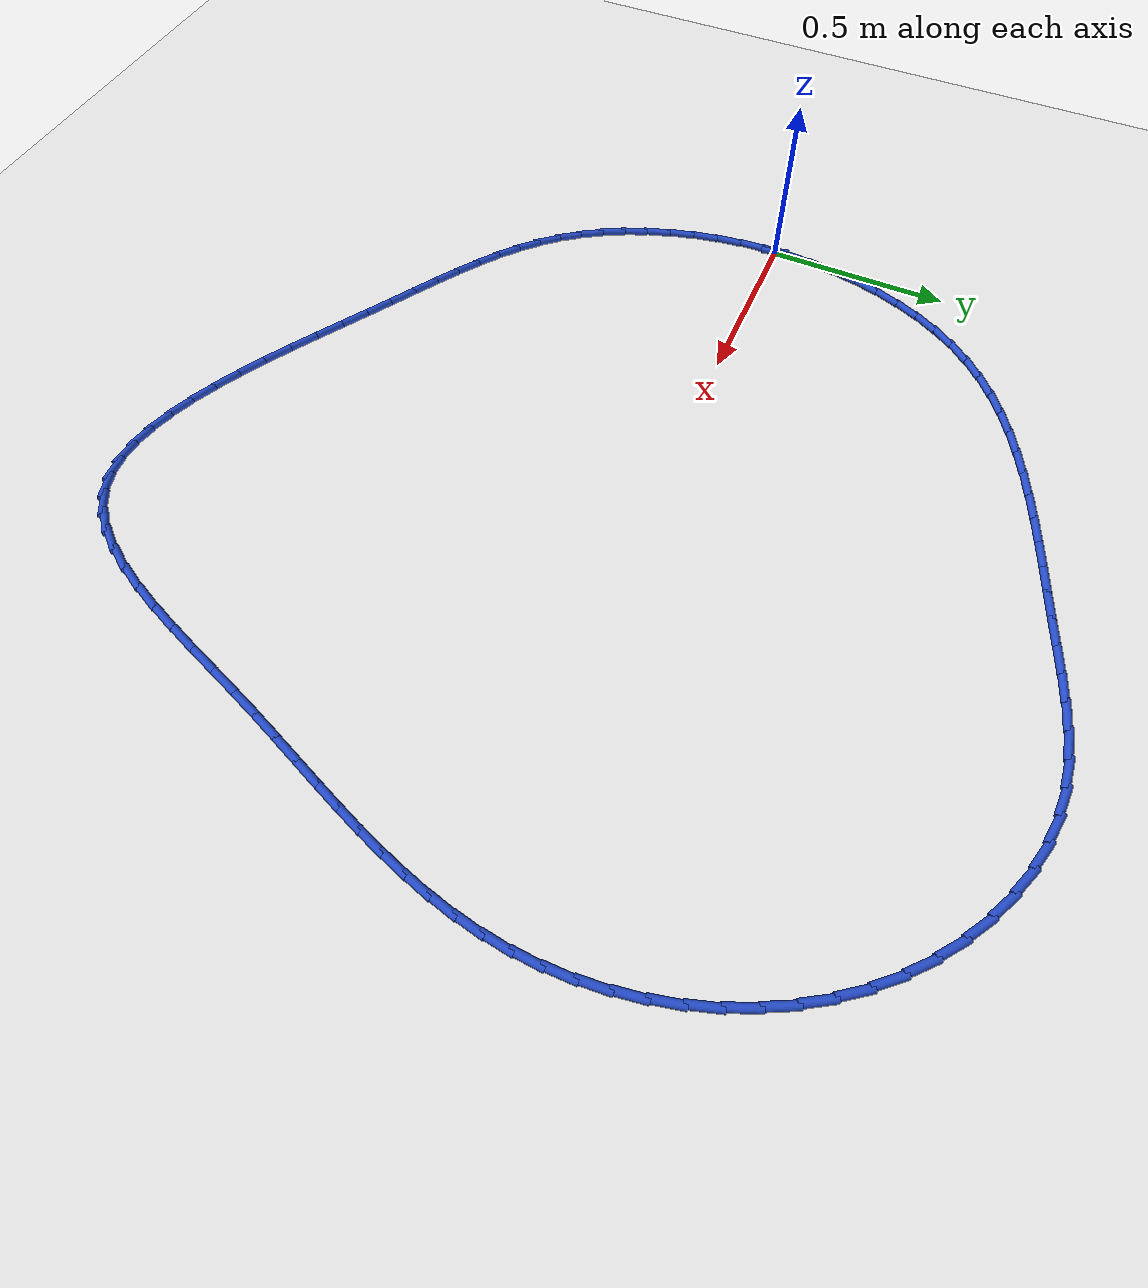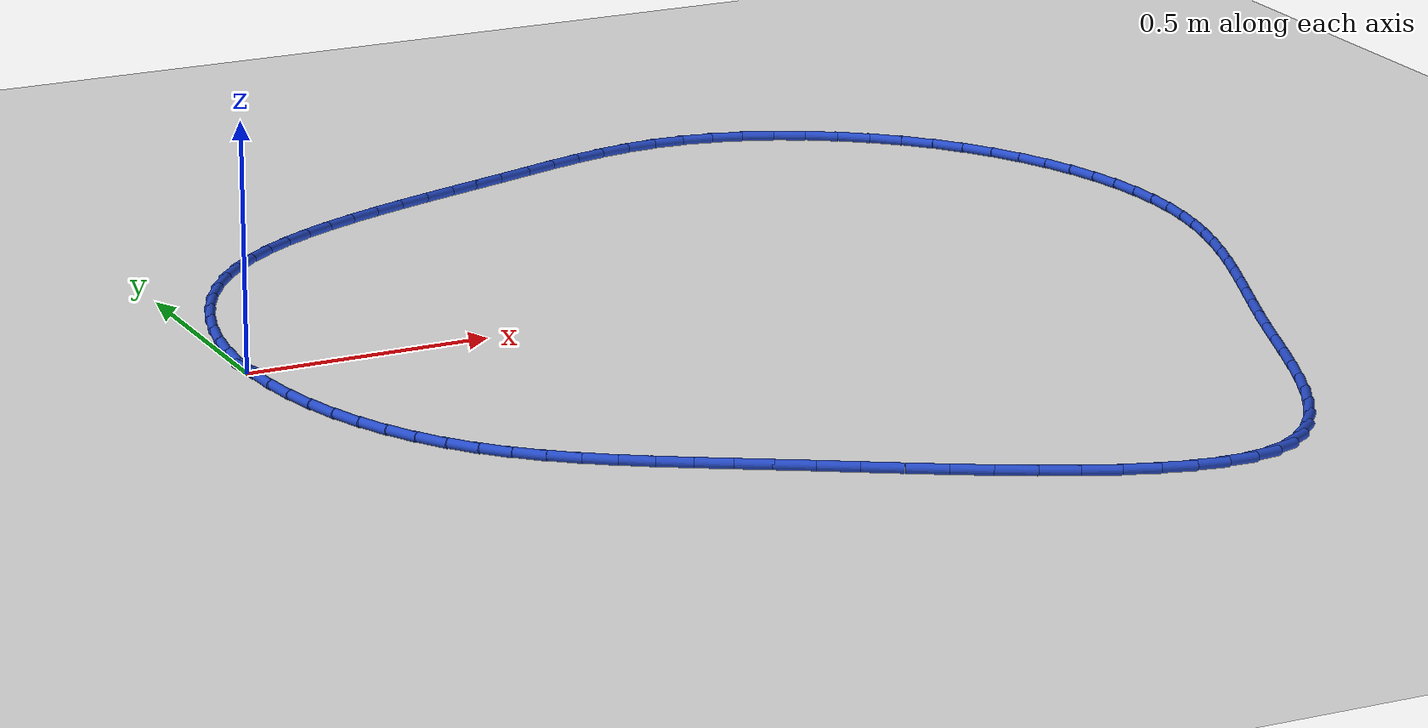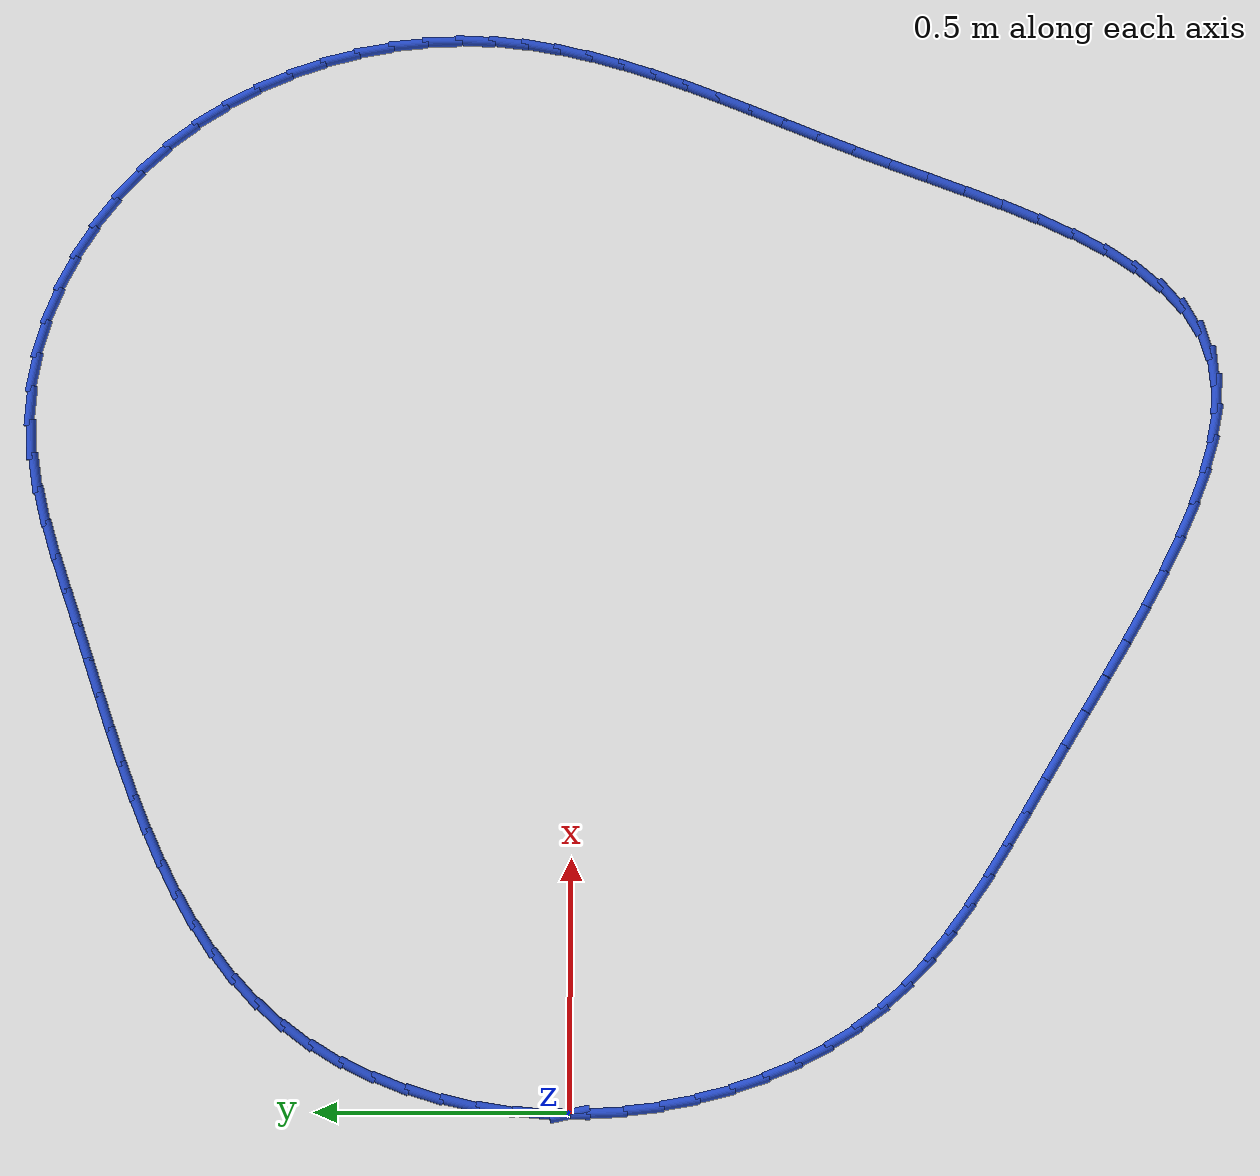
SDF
<sdf version="1.6">
 <world name="default">
  <light name="sun" type="directional">
   <pose>0 0 10 0 -0 0</pose>
   <diffuse>0.8 0.8 0.8 1</diffuse>
   <specular>0.2 0.2 0.2 1</specular>
   <attenuation>
    <range>1000</range>
    <constant>0.9</constant>
    <linear>0.01</linear>
    <quadratic>0.001</quadratic>
   </attenuation>
   <direction>-0.5 0.1 -0.9</direction>
  </light>
  <model name="ground_plane">
   <static>1</static>
   <link name="link">
    <collision name="collision">
     <geometry><plane><normal>0 0 1</normal><size>100 100</size></plane></geometry>
     <surface><friction><ode><mu>100</mu><mu2>50</mu2></ode></friction></surface>
    </collision>
    <visual name="visual">
     <cast_shadows>0</cast_shadows>
     <geometry><plane><normal>0 0 1</normal><size>100 100</size></plane></geometry>
     <material>
      <script><uri>file://media/materials/scripts/gazebo.material</uri><name>Gazebo/WhiteGlow</name></script>
     </material>
    </visual>
   </link>
  </model>
  <gravity>0 0 -9.8</gravity>
  <magnetic_field>6e-06 2.3e-05 -4.2e-05</magnetic_field>
  <atmosphere type="adiabatic"/>
  <physics name="default_physics" default="0" type="ode">
   <max_step_size>0.001</max_step_size>
   <real_time_factor>1</real_time_factor>
   <real_time_update_rate>1000</real_time_update_rate>
  </physics>
  <scene><ambient>0.4 0.4 0.4 1</ambient><background>0.7 0.7 0.7 1</background><shadows>1</shadows></scene>
  <spherical_coordinates>
   <surface_model>EARTH_WGS84</surface_model>
   <latitude_deg>0</latitude_deg>
   <longitude_deg>0</longitude_deg>
   <elevation>0</elevation>
   <heading_deg>0</heading_deg>
  </spherical_coordinates>
  <model name="line">
   <link name="link_0">
    <pose>-4.163336342344337e-17 -9.71445146547012e-17 0.01 0 1.57 1.5441960842757674</pose>
    <collision name="collision">
     <geometry><cylinder><radius>0.01</radius><length>0.08</length></cylinder></geometry>
    </collision>
    <visual name="visual">
     <material>
      <script><name>Gazebo/Blue</name><uri>file://media/materials/scripts/gazebo.material</uri></script>
     </material>
     <geometry><cylinder><radius>0.01</radius><length>0.08</length></cylinder></geometry>
    </visual>
   </link>
   <link name="link_1">
    <pose>0.0019254566969696756 0.07236785681562076 0.01 0 1.57 1.4767528906514031</pose>
    <collision name="collision">
     <geometry><cylinder><radius>0.01</radius><length>0.08</length></cylinder></geometry>
    </collision>
    <visual name="visual">
     <material>
      <script><name>Gazebo/Blue</name><uri>file://media/materials/scripts/gazebo.material</uri></script>
     </material>
     <geometry><cylinder><radius>0.01</radius><length>0.08</length></cylinder></geometry>
    </visual>
   </link>
   <link name="link_2">
    <pose>0.008705572307833075 0.14425076467885847 0.01 0 1.57 1.4082338307532505</pose>
    <collision name="collision">
     <geometry><cylinder><radius>0.01</radius><length>0.08</length></cylinder></geometry>
    </collision>
    <visual name="visual">
     <material>
      <script><name>Gazebo/Blue</name><uri>file://media/materials/scripts/gazebo.material</uri></script>
     </material>
     <geometry><cylinder><radius>0.01</radius><length>0.08</length></cylinder></geometry>
    </visual>
   </link>
   <link name="link_3">
    <pose>0.020325228089800848 0.2150980967287762 0.01 0 1.57 1.3376908909073655</pose>
    <collision name="collision">
     <geometry><cylinder><radius>0.01</radius><length>0.08</length></cylinder></geometry>
    </collision>
    <visual name="visual">
     <material>
      <script><name>Gazebo/Blue</name><uri>file://media/materials/scripts/gazebo.material</uri></script>
     </material>
     <geometry><cylinder><radius>0.01</radius><length>0.08</length></cylinder></geometry>
    </visual>
   </link>
   <link name="link_4">
    <pose>0.03676930530008363 0.2843592261044371 0.01 0 1.57 1.264155866896494</pose>
    <collision name="collision">
     <geometry><cylinder><radius>0.01</radius><length>0.08</length></cylinder></geometry>
    </collision>
    <visual name="visual">
     <material>
      <script><name>Gazebo/Blue</name><uri>file://media/materials/scripts/gazebo.material</uri></script>
     </material>
     <geometry><cylinder><radius>0.01</radius><length>0.08</length></cylinder></geometry>
    </visual>
   </link>
   <link name="link_5">
    <pose>0.05802268519589207 0.3514835259449039 0.01 0 1.57 1.1866452755042212</pose>
    <collision name="collision">
     <geometry><cylinder><radius>0.01</radius><length>0.08</length></cylinder></geometry>
    </collision>
    <visual name="visual">
     <material>
      <script><name>Gazebo/Blue</name><uri>file://media/materials/scripts/gazebo.material</uri></script>
     </material>
     <geometry><cylinder><radius>0.01</radius><length>0.08</length></cylinder></geometry>
    </visual>
   </link>
   <link name="link_6">
    <pose>0.08407024903443686 0.4159203693892401 0.01 0 1.57 1.104182497661725</pose>
    <collision name="collision">
     <geometry><cylinder><radius>0.01</radius><length>0.08</length></cylinder></geometry>
    </collision>
    <visual name="visual">
     <material>
      <script><name>Gazebo/Blue</name><uri>file://media/materials/scripts/gazebo.material</uri></script>
     </material>
     <geometry><cylinder><radius>0.01</radius><length>0.08</length></cylinder></geometry>
    </visual>
   </link>
   <link name="link_7">
    <pose>0.11489687807292867 0.47711912957650865 0.01 0 1.57 1.015846594948988</pose>
    <collision name="collision">
     <geometry><cylinder><radius>0.01</radius><length>0.08</length></cylinder></geometry>
    </collision>
    <visual name="visual">
     <material>
      <script><name>Gazebo/Blue</name><uri>file://media/materials/scripts/gazebo.material</uri></script>
     </material>
     <geometry><cylinder><radius>0.01</radius><length>0.08</length></cylinder></geometry>
    </visual>
   </link>
   <link name="link_8">
    <pose>0.15048745356857807 0.5345291796457723 0.01 0 1.57 0.9208582630034053</pose>
    <collision name="collision">
     <geometry><cylinder><radius>0.01</radius><length>0.08</length></cylinder></geometry>
    </collision>
    <visual name="visual">
     <material>
      <script><name>Gazebo/Blue</name><uri>file://media/materials/scripts/gazebo.material</uri></script>
     </material>
     <geometry><cylinder><radius>0.01</radius><length>0.08</length></cylinder></geometry>
    </visual>
   </link>
   <link name="link_9">
    <pose>0.1908268567785958 0.5875998927360946 0.01 0 1.57 0.8211212208538966</pose>
    <collision name="collision">
     <geometry><cylinder><radius>0.01</radius><length>0.08</length></cylinder></geometry>
    </collision>
    <visual name="visual">
     <material>
      <script><name>Gazebo/Blue</name><uri>file://media/materials/scripts/gazebo.material</uri></script>
     </material>
     <geometry><cylinder><radius>0.01</radius><length>0.08</length></cylinder></geometry>
    </visual>
   </link>
   <link name="link_10">
    <pose>0.2358316940518963 0.6359407425424886 0.01 0 1.57 0.7270515077841354</pose>
    <collision name="collision">
     <geometry><cylinder><radius>0.01</radius><length>0.08</length></cylinder></geometry>
    </collision>
    <visual name="visual">
     <material>
      <script><name>Gazebo/Blue</name><uri>file://media/materials/scripts/gazebo.material</uri></script>
     </material>
     <geometry><cylinder><radius>0.01</radius><length>0.08</length></cylinder></geometry>
    </visual>
   </link>
   <link name="link_11">
    <pose>0.2851424607427094 0.679808666445474 0.01 0 1.57 0.6425984398836045</pose>
    <collision name="collision">
     <geometry><cylinder><radius>0.01</radius><length>0.08</length></cylinder></geometry>
    </collision>
    <visual name="visual">
     <material>
      <script><name>Gazebo/Blue</name><uri>file://media/materials/scripts/gazebo.material</uri></script>
     </material>
     <geometry><cylinder><radius>0.01</radius><length>0.08</length></cylinder></geometry>
    </visual>
   </link>
   <link name="link_12">
    <pose>0.3383298633335364 0.7196242525347653 0.01 0 1.57 0.5685311567885198</pose>
    <collision name="collision">
     <geometry><cylinder><radius>0.01</radius><length>0.08</length></cylinder></geometry>
    </collision>
    <visual name="visual">
     <material>
      <script><name>Gazebo/Blue</name><uri>file://media/materials/scripts/gazebo.material</uri></script>
     </material>
     <geometry><cylinder><radius>0.01</radius><length>0.08</length></cylinder></geometry>
    </visual>
   </link>
   <link name="link_13">
    <pose>0.394964608303507 0.7558080889079828 0.01 0 1.57 0.5049468567642643</pose>
    <collision name="collision">
     <geometry><cylinder><radius>0.01</radius><length>0.08</length></cylinder></geometry>
    </collision>
    <visual name="visual">
     <material>
      <script><name>Gazebo/Blue</name><uri>file://media/materials/scripts/gazebo.material</uri></script>
     </material>
     <geometry><cylinder><radius>0.01</radius><length>0.08</length></cylinder></geometry>
    </visual>
   </link>
   <link name="link_14">
    <pose>0.4546174021317505 0.7887807636627471 0.01 0 1.57 0.45151007248938646</pose>
    <collision name="collision">
     <geometry><cylinder><radius>0.01</radius><length>0.08</length></cylinder></geometry>
    </collision>
    <visual name="visual">
     <material>
      <script><name>Gazebo/Blue</name><uri>file://media/materials/scripts/gazebo.material</uri></script>
     </material>
     <geometry><cylinder><radius>0.01</radius><length>0.08</length></cylinder></geometry>
    </visual>
   </link>
   <link name="link_15">
    <pose>0.5168589512973968 0.8189628648966787 0.01 0 1.57 0.4076653794851117</pose>
    <collision name="collision">
     <geometry><cylinder><radius>0.01</radius><length>0.08</length></cylinder></geometry>
    </collision>
    <visual name="visual">
     <material>
      <script><name>Gazebo/Blue</name><uri>file://media/materials/scripts/gazebo.material</uri></script>
     </material>
     <geometry><cylinder><radius>0.01</radius><length>0.08</length></cylinder></geometry>
    </visual>
   </link>
   <link name="link_16">
    <pose>0.5812599622795758 0.8467749807073988 0.01 0 1.57 0.3727949450367546</pose>
    <collision name="collision">
     <geometry><cylinder><radius>0.01</radius><length>0.08</length></cylinder></geometry>
    </collision>
    <visual name="visual">
     <material>
      <script><name>Gazebo/Blue</name><uri>file://media/materials/scripts/gazebo.material</uri></script>
     </material>
     <geometry><cylinder><radius>0.01</radius><length>0.08</length></cylinder></geometry>
    </visual>
   </link>
   <link name="link_17">
    <pose>0.6473911415574168 0.8726376991925275 0.01 0 1.57 0.34632166608344545</pose>
    <collision name="collision">
     <geometry><cylinder><radius>0.01</radius><length>0.08</length></cylinder></geometry>
    </collision>
    <visual name="visual">
     <material>
      <script><name>Gazebo/Blue</name><uri>file://media/materials/scripts/gazebo.material</uri></script>
     </material>
     <geometry><cylinder><radius>0.01</radius><length>0.08</length></cylinder></geometry>
    </visual>
   </link>
   <link name="link_18">
    <pose>0.7148231956100495 0.8969716084496856 0.01 0 1.57 0.3277706867109438</pose>
    <collision name="collision">
     <geometry><cylinder><radius>0.01</radius><length>0.08</length></cylinder></geometry>
    </collision>
    <visual name="visual">
     <material>
      <script><name>Gazebo/Blue</name><uri>file://media/materials/scripts/gazebo.material</uri></script>
     </material>
     <geometry><cylinder><radius>0.01</radius><length>0.08</length></cylinder></geometry>
    </visual>
   </link>
   <link name="link_19">
    <pose>0.7831268309166036 0.9201972965764935 0.01 0 1.57 0.31680357833871725</pose>
    <collision name="collision">
     <geometry><cylinder><radius>0.01</radius><length>0.08</length></cylinder></geometry>
    </collision>
    <visual name="visual">
     <material>
      <script><name>Gazebo/Blue</name><uri>file://media/materials/scripts/gazebo.material</uri></script>
     </material>
     <geometry><cylinder><radius>0.01</radius><length>0.08</length></cylinder></geometry>
    </visual>
   </link>
   <link name="link_20">
    <pose>0.8518727539562088 0.9427353516705721 0.01 0 1.57 0.3132366239114829</pose>
    <collision name="collision">
     <geometry><cylinder><radius>0.01</radius><length>0.08</length></cylinder></geometry>
    </collision>
    <visual name="visual">
     <material>
      <script><name>Gazebo/Blue</name><uri>file://media/materials/scripts/gazebo.material</uri></script>
     </material>
     <geometry><cylinder><radius>0.01</radius><length>0.08</length></cylinder></geometry>
    </visual>
   </link>
   <link name="link_21">
    <pose>0.9206316712079943 0.9650063618295415 0.01 0 1.57 0.31703243560488065</pose>
    <collision name="collision">
     <geometry><cylinder><radius>0.01</radius><length>0.08</length></cylinder></geometry>
    </collision>
    <visual name="visual">
     <material>
      <script><name>Gazebo/Blue</name><uri>file://media/materials/scripts/gazebo.material</uri></script>
     </material>
     <geometry><cylinder><radius>0.01</radius><length>0.08</length></cylinder></geometry>
    </visual>
   </link>
   <link name="link_22">
    <pose>0.9889747148369554 0.987429657861617 0.01 0 1.57 0.3212629503142404</pose>
    <collision name="collision">
     <geometry><cylinder><radius>0.01</radius><length>0.08</length></cylinder></geometry>
    </collision>
    <visual name="visual">
     <material>
      <script><name>Gazebo/Blue</name><uri>file://media/materials/scripts/gazebo.material</uri></script>
     </material>
     <geometry><cylinder><radius>0.01</radius><length>0.08</length></cylinder></geometry>
    </visual>
   </link>
   <link name="link_23">
    <pose>1.0566349113848896 1.0099464055672696 0.01 0 1.57 0.30805359795171594</pose>
    <collision name="collision">
     <geometry><cylinder><radius>0.01</radius><length>0.08</length></cylinder></geometry>
    </collision>
    <visual name="visual">
     <material>
      <script><name>Gazebo/Blue</name><uri>file://media/materials/scripts/gazebo.material</uri></script>
     </material>
     <geometry><cylinder><radius>0.01</radius><length>0.08</length></cylinder></geometry>
    </visual>
   </link>
   <link name="link_24">
    <pose>1.1237503546369747 1.0313013797086104 0.01 0 1.57 0.2738139607576156</pose>
    <collision name="collision">
     <geometry><cylinder><radius>0.01</radius><length>0.08</length></cylinder></geometry>
    </collision>
    <visual name="visual">
     <material>
      <script><name>Gazebo/Blue</name><uri>file://media/materials/scripts/gazebo.material</uri></script>
     </material>
     <geometry><cylinder><radius>0.01</radius><length>0.08</length></cylinder></geometry>
    </visual>
   </link>
   <link name="link_25">
    <pose>1.1905214595829 1.0500552855338847 0.01 0 1.57 0.2173456023994492</pose>
    <collision name="collision">
     <geometry><cylinder><radius>0.01</radius><length>0.08</length></cylinder></geometry>
    </collision>
    <visual name="visual">
     <material>
      <script><name>Gazebo/Blue</name><uri>file://media/materials/scripts/gazebo.material</uri></script>
     </material>
     <geometry><cylinder><radius>0.01</radius><length>0.08</length></cylinder></geometry>
    </visual>
   </link>
   <link name="link_26">
    <pose>1.2571486412123503 1.0647688282913355 0.01 0 1.57 0.13759793301774764</pose>
    <collision name="collision">
     <geometry><cylinder><radius>0.01</radius><length>0.08</length></cylinder></geometry>
    </collision>
    <visual name="visual">
     <material>
      <script><name>Gazebo/Blue</name><uri>file://media/materials/scripts/gazebo.material</uri></script>
     </material>
     <geometry><cylinder><radius>0.01</radius><length>0.08</length></cylinder></geometry>
    </visual>
   </link>
   <link name="link_27">
    <pose>1.3238323145150137 1.074002713229208 0.01 0 1.57 0.03456812316466727</pose>
    <collision name="collision">
     <geometry><cylinder><radius>0.01</radius><length>0.08</length></cylinder></geometry>
    </collision>
    <visual name="visual">
     <material>
      <script><name>Gazebo/Blue</name><uri>file://media/materials/scripts/gazebo.material</uri></script>
     </material>
     <geometry><cylinder><radius>0.01</radius><length>0.08</length></cylinder></geometry>
    </visual>
   </link>
   <link name="link_28">
    <pose>1.3907728944805777 1.076317645595746 0.01 0 1.57 -0.0851312083989855</pose>
    <collision name="collision">
     <geometry><cylinder><radius>0.01</radius><length>0.08</length></cylinder></geometry>
    </collision>
    <visual name="visual">
     <material>
      <script><name>Gazebo/Blue</name><uri>file://media/materials/scripts/gazebo.material</uri></script>
     </material>
     <geometry><cylinder><radius>0.01</radius><length>0.08</length></cylinder></geometry>
    </visual>
   </link>
   <link name="link_29">
    <pose>1.4580378656585262 1.070577423531421 0.01 0 1.57 -0.20036541612657457</pose>
    <collision name="collision">
     <geometry><cylinder><radius>0.01</radius><length>0.08</length></cylinder></geometry>
    </collision>
    <visual name="visual">
     <material>
      <script><name>Gazebo/Blue</name><uri>file://media/materials/scripts/gazebo.material</uri></script>
     </material>
     <geometry><cylinder><radius>0.01</radius><length>0.08</length></cylinder></geometry>
    </visual>
   </link>
   <link name="link_30">
    <pose>1.5251212325142525 1.0569534293316931 0.01 0 1.57 -0.30677895208235606</pose>
    <collision name="collision">
     <geometry><cylinder><radius>0.01</radius><length>0.08</length></cylinder></geometry>
    </collision>
    <visual name="visual">
     <material>
      <script><name>Gazebo/Blue</name><uri>file://media/materials/scripts/gazebo.material</uri></script>
     </material>
     <geometry><cylinder><radius>0.01</radius><length>0.08</length></cylinder></geometry>
    </visual>
   </link>
   <link name="link_31">
    <pose>1.5913623828893384 1.035969584557113 0.01 0 1.57 -0.405867176798396</pose>
    <collision name="collision">
     <geometry><cylinder><radius>0.01</radius><length>0.08</length></cylinder></geometry>
    </collision>
    <visual name="visual">
     <material>
      <script><name>Gazebo/Blue</name><uri>file://media/materials/scripts/gazebo.material</uri></script>
     </material>
     <geometry><cylinder><radius>0.01</radius><length>0.08</length></cylinder></geometry>
    </visual>
   </link>
   <link name="link_32">
    <pose>1.656100702331133 1.008149815999285 0.01 0 1.57 -0.4993469195373617</pose>
    <collision name="collision">
     <geometry><cylinder><radius>0.01</radius><length>0.08</length></cylinder></geometry>
    </collision>
    <visual name="visual">
     <material>
      <script><name>Gazebo/Blue</name><uri>file://media/materials/scripts/gazebo.material</uri></script>
     </material>
     <geometry><cylinder><radius>0.01</radius><length>0.08</length></cylinder></geometry>
    </visual>
   </link>
   <link name="link_33">
    <pose>1.7186755763869828 0.9740180504498119 0.01 0 1.57 -0.5889979203279362</pose>
    <collision name="collision">
     <geometry><cylinder><radius>0.01</radius><length>0.08</length></cylinder></geometry>
    </collision>
    <visual name="visual">
     <material>
      <script><name>Gazebo/Blue</name><uri>file://media/materials/scripts/gazebo.material</uri></script>
     </material>
     <geometry><cylinder><radius>0.01</radius><length>0.08</length></cylinder></geometry>
    </visual>
   </link>
   <link name="link_34">
    <pose>1.7784263906042375 0.9340982147002982 0.01 0 1.57 -0.6765920500046849</pose>
    <collision name="collision">
     <geometry><cylinder><radius>0.01</radius><length>0.08</length></cylinder></geometry>
    </collision>
    <visual name="visual">
     <material>
      <script><name>Gazebo/Blue</name><uri>file://media/materials/scripts/gazebo.material</uri></script>
     </material>
     <geometry><cylinder><radius>0.01</radius><length>0.08</length></cylinder></geometry>
    </visual>
   </link>
   <link name="link_35">
    <pose>1.8346925305302442 0.888914235542347 0.01 0 1.57 -0.7638751569448927</pose>
    <collision name="collision">
     <geometry><cylinder><radius>0.01</radius><length>0.08</length></cylinder></geometry>
    </collision>
    <visual name="visual">
     <material>
      <script><name>Gazebo/Blue</name><uri>file://media/materials/scripts/gazebo.material</uri></script>
     </material>
     <geometry><cylinder><radius>0.01</radius><length>0.08</length></cylinder></geometry>
    </visual>
   </link>
   <link name="link_36">
    <pose>1.8868133817123511 0.8389900397675624 0.01 0 1.57 -0.8524862398051977</pose>
    <collision name="collision">
     <geometry><cylinder><radius>0.01</radius><length>0.08</length></cylinder></geometry>
    </collision>
    <visual name="visual">
     <material>
      <script><name>Gazebo/Blue</name><uri>file://media/materials/scripts/gazebo.material</uri></script>
     </material>
     <geometry><cylinder><radius>0.01</radius><length>0.08</length></cylinder></geometry>
    </visual>
   </link>
   <link name="link_37">
    <pose>1.9341362004313423 0.7848500454187075 0.01 0 1.57 -0.9406996228084142</pose>
    <collision name="collision">
     <geometry><cylinder><radius>0.01</radius><length>0.08</length></cylinder></geometry>
    </collision>
    <visual name="visual">
     <material>
      <script><name>Gazebo/Blue</name><uri>file://media/materials/scripts/gazebo.material</uri></script>
     </material>
     <geometry><cylinder><radius>0.01</radius><length>0.08</length></cylinder></geometry>
    </visual>
   </link>
   <link name="link_38">
    <pose>1.9762973161218103 0.7270367130149363 0.01 0 1.57 -1.024975880051285</pose>
    <collision name="collision">
     <geometry><cylinder><radius>0.01</radius><length>0.08</length></cylinder></geometry>
    </collision>
    <visual name="visual">
     <material>
      <script><name>Gazebo/Blue</name><uri>file://media/materials/scripts/gazebo.material</uri></script>
     </material>
     <geometry><cylinder><radius>0.01</radius><length>0.08</length></cylinder></geometry>
    </visual>
   </link>
   <link name="link_39">
    <pose>2.013299079108123 0.6661153482382084 0.01 0 1.57 -1.1054234771689952</pose>
    <collision name="collision">
     <geometry><cylinder><radius>0.01</radius><length>0.08</length></cylinder></geometry>
    </collision>
    <visual name="visual">
     <material>
      <script><name>Gazebo/Blue</name><uri>file://media/materials/scripts/gazebo.material</uri></script>
     </material>
     <geometry><cylinder><radius>0.01</radius><length>0.08</length></cylinder></geometry>
    </visual>
   </link>
   <link name="link_40">
    <pose>2.0451673692116397 0.6026527253620436 0.01 0 1.57 -1.1825958054746404</pose>
    <collision name="collision">
     <geometry><cylinder><radius>0.01</radius><length>0.08</length></cylinder></geometry>
    </collision>
    <visual name="visual">
     <material>
      <script><name>Gazebo/Blue</name><uri>file://media/materials/scripts/gazebo.material</uri></script>
     </material>
     <geometry><cylinder><radius>0.01</radius><length>0.08</length></cylinder></geometry>
    </visual>
   </link>
   <link name="link_41">
    <pose>2.07192806625372 0.5372156186599624 0.01 0 1.57 -1.2571813065185364</pose>
    <collision name="collision">
     <geometry><cylinder><radius>0.01</radius><length>0.08</length></cylinder></geometry>
    </collision>
    <visual name="visual">
     <material>
      <script><name>Gazebo/Blue</name><uri>file://media/materials/scripts/gazebo.material</uri></script>
     </material>
     <geometry><cylinder><radius>0.01</radius><length>0.08</length></cylinder></geometry>
    </visual>
   </link>
   <link name="link_42">
    <pose>2.093607050055725 0.47037080240548484 0.01 0 1.57 -1.329969659708175</pose>
    <collision name="collision">
     <geometry><cylinder><radius>0.01</radius><length>0.08</length></cylinder></geometry>
    </collision>
    <visual name="visual">
     <material>
      <script><name>Gazebo/Blue</name><uri>file://media/materials/scripts/gazebo.material</uri></script>
     </material>
     <geometry><cylinder><radius>0.01</radius><length>0.08</length></cylinder></geometry>
    </visual>
   </link>
   <link name="link_43">
    <pose>2.110230200439013 0.40268505087213036 0.01 0 1.57 -1.4018340086658638</pose>
    <collision name="collision">
     <geometry><cylinder><radius>0.01</radius><length>0.08</length></cylinder></geometry>
    </collision>
    <visual name="visual">
     <material>
      <script><name>Gazebo/Blue</name><uri>file://media/materials/scripts/gazebo.material</uri></script>
     </material>
     <geometry><cylinder><radius>0.01</radius><length>0.08</length></cylinder></geometry>
    </visual>
   </link>
   <link name="link_44">
    <pose>2.121823397224946 0.3347251383334194 0.01 0 1.57 -1.473727064977006</pose>
    <collision name="collision">
     <geometry><cylinder><radius>0.01</radius><length>0.08</length></cylinder></geometry>
    </collision>
    <visual name="visual">
     <material>
      <script><name>Gazebo/Blue</name><uri>file://media/materials/scripts/gazebo.material</uri></script>
     </material>
     <geometry><cylinder><radius>0.01</radius><length>0.08</length></cylinder></geometry>
    </visual>
   </link>
   <link name="link_45">
    <pose>2.1284125202348814 0.2670578390628717 0.01 0 1.57 -1.5466631770510437</pose>
    <collision name="collision">
     <geometry><cylinder><radius>0.01</radius><length>0.08</length></cylinder></geometry>
    </collision>
    <visual name="visual">
     <material>
      <script><name>Gazebo/Blue</name><uri>file://media/materials/scripts/gazebo.material</uri></script>
     </material>
     <geometry><cylinder><radius>0.01</radius><length>0.08</length></cylinder></geometry>
    </visual>
   </link>
   <link name="link_46">
    <pose>2.130025205232897 0.20024634026287408 0.01 0 1.57 1.5222159827174908</pose>
    <collision name="collision">
     <geometry><cylinder><radius>0.01</radius><length>0.08</length></cylinder></geometry>
    </collision>
    <visual name="visual">
     <material>
      <script><name>Gazebo/Blue</name><uri>file://media/materials/scripts/gazebo.material</uri></script>
     </material>
     <geometry><cylinder><radius>0.01</radius><length>0.08</length></cylinder></geometry>
    </visual>
   </link>
   <link name="link_47">
    <pose>2.126831744553433 0.13456240774663983 0.01 0 1.57 1.4542719718325414</pose>
    <collision name="collision">
     <geometry><cylinder><radius>0.01</radius><length>0.08</length></cylinder></geometry>
    </collision>
    <visual name="visual">
     <material>
      <script><name>Gazebo/Blue</name><uri>file://media/materials/scripts/gazebo.material</uri></script>
     </material>
     <geometry><cylinder><radius>0.01</radius><length>0.08</length></cylinder></geometry>
    </visual>
   </link>
   <link name="link_48">
    <pose>2.1192481727862273 0.06977580066036106 0.01 0 1.57 1.3929616304782233</pose>
    <collision name="collision">
     <geometry><cylinder><radius>0.01</radius><length>0.08</length></cylinder></geometry>
    </collision>
    <visual name="visual">
     <material>
      <script><name>Gazebo/Blue</name><uri>file://media/materials/scripts/gazebo.material</uri></script>
     </material>
     <geometry><cylinder><radius>0.01</radius><length>0.08</length></cylinder></geometry>
    </visual>
   </link>
   <link name="link_49">
    <pose>2.1077148290607766 0.005606628402438781 0.01 0 1.57 1.3393558069771974</pose>
    <collision name="collision">
     <geometry><cylinder><radius>0.01</radius><length>0.08</length></cylinder></geometry>
    </collision>
    <visual name="visual">
     <material>
      <script><name>Gazebo/Blue</name><uri>file://media/materials/scripts/gazebo.material</uri></script>
     </material>
     <geometry><cylinder><radius>0.01</radius><length>0.08</length></cylinder></geometry>
    </visual>
   </link>
   <link name="link_50">
    <pose>2.0926720525065754 -0.05822499962872501 0.01 0 1.57 1.2940813974500647</pose>
    <collision name="collision">
     <geometry><cylinder><radius>0.01</radius><length>0.08</length></cylinder></geometry>
    </collision>
    <visual name="visual">
     <material>
      <script><name>Gazebo/Blue</name><uri>file://media/materials/scripts/gazebo.material</uri></script>
     </material>
     <geometry><cylinder><radius>0.01</radius><length>0.08</length></cylinder></geometry>
    </visual>
   </link>
   <link name="link_51">
    <pose>2.074560182253122 -0.12199897403472854 0.01 0 1.57 1.2573864011234177</pose>
    <collision name="collision">
     <geometry><cylinder><radius>0.01</radius><length>0.08</length></cylinder></geometry>
    </collision>
    <visual name="visual">
     <material>
      <script><name>Gazebo/Blue</name><uri>file://media/materials/scripts/gazebo.material</uri></script>
     </material>
     <geometry><cylinder><radius>0.01</radius><length>0.08</length></cylinder></geometry>
    </visual>
   </link>
   <link name="link_52">
    <pose>2.0538195574299087 -0.18599518541717017 0.01 0 1.57 1.229231798746439</pose>
    <collision name="collision">
     <geometry><cylinder><radius>0.01</radius><length>0.08</length></cylinder></geometry>
    </collision>
    <visual name="visual">
     <material>
      <script><name>Gazebo/Blue</name><uri>file://media/materials/scripts/gazebo.material</uri></script>
     </material>
     <geometry><cylinder><radius>0.01</radius><length>0.08</length></cylinder></geometry>
    </visual>
   </link>
   <link name="link_53">
    <pose>2.0308905171664353 -0.2504935243776482 0.01 0 1.57 1.2093828162227123</pose>
    <collision name="collision">
     <geometry><cylinder><radius>0.01</radius><length>0.08</length></cylinder></geometry>
    </collision>
    <visual name="visual">
     <material>
      <script><name>Gazebo/Blue</name><uri>file://media/materials/scripts/gazebo.material</uri></script>
     </material>
     <geometry><cylinder><radius>0.01</radius><length>0.08</length></cylinder></geometry>
    </visual>
   </link>
   <link name="link_54">
    <pose>2.006213400592195 -0.31577388151776103 0.01 0 1.57 1.1974839863420936</pose>
    <collision name="collision">
     <geometry><cylinder><radius>0.01</radius><length>0.08</length></cylinder></geometry>
    </collision>
    <visual name="visual">
     <material>
      <script><name>Gazebo/Blue</name><uri>file://media/materials/scripts/gazebo.material</uri></script>
     </material>
     <geometry><cylinder><radius>0.01</radius><length>0.08</length></cylinder></geometry>
    </visual>
   </link>
   <link name="link_55">
    <pose>1.9802285468366843 -0.3821161474391068 0.01 0 1.57 1.1931126952651878</pose>
    <collision name="collision">
     <geometry><cylinder><radius>0.01</radius><length>0.08</length></cylinder></geometry>
    </collision>
    <visual name="visual">
     <material>
      <script><name>Gazebo/Blue</name><uri>file://media/materials/scripts/gazebo.material</uri></script>
     </material>
     <geometry><cylinder><radius>0.01</radius><length>0.08</length></cylinder></geometry>
    </visual>
   </link>
   <link name="link_56">
    <pose>1.953376295029399 -0.4498002127432839 0.01 0 1.57 1.1958122733085417</pose>
    <collision name="collision">
     <geometry><cylinder><radius>0.01</radius><length>0.08</length></cylinder></geometry>
    </collision>
    <visual name="visual">
     <material>
      <script><name>Gazebo/Blue</name><uri>file://media/materials/scripts/gazebo.material</uri></script>
     </material>
     <geometry><cylinder><radius>0.01</radius><length>0.08</length></cylinder></geometry>
    </visual>
   </link>
   <link name="link_57">
    <pose>1.926096984299835 -0.5191059680318908 0.01 0 1.57 1.2051085979643439</pose>
    <collision name="collision">
     <geometry><cylinder><radius>0.01</radius><length>0.08</length></cylinder></geometry>
    </collision>
    <visual name="visual">
     <material>
      <script><name>Gazebo/Blue</name><uri>file://media/materials/scripts/gazebo.material</uri></script>
     </material>
     <geometry><cylinder><radius>0.01</radius><length>0.08</length></cylinder></geometry>
    </visual>
   </link>
   <link name="link_58">
    <pose>1.898830953777489 -0.5903133039065247 0.01 0 1.57 1.218829828299603</pose>
    <collision name="collision">
     <geometry><cylinder><radius>0.01</radius><length>0.08</length></cylinder></geometry>
    </collision>
    <visual name="visual">
     <material>
      <script><name>Gazebo/Blue</name><uri>file://media/materials/scripts/gazebo.material</uri></script>
     </material>
     <geometry><cylinder><radius>0.01</radius><length>0.08</length></cylinder></geometry>
    </visual>
   </link>
   <link name="link_59">
    <pose>1.8719322155200813 -0.6635552550736802 0.01 0 1.57 1.225584747887063</pose>
    <collision name="collision">
     <geometry><cylinder><radius>0.01</radius><length>0.08</length></cylinder></geometry>
    </collision>
    <visual name="visual">
     <material>
      <script><name>Gazebo/Blue</name><uri>file://media/materials/scripts/gazebo.material</uri></script>
     </material>
     <geometry><cylinder><radius>0.01</radius><length>0.08</length></cylinder></geometry>
    </visual>
   </link>
   <link name="link_60">
    <pose>1.845171117928283 -0.73797195277358 0.01 0 1.57 1.221202159915652</pose>
    <collision name="collision">
     <geometry><cylinder><radius>0.01</radius><length>0.08</length></cylinder></geometry>
    </collision>
    <visual name="visual">
     <material>
      <script><name>Gazebo/Blue</name><uri>file://media/materials/scripts/gazebo.material</uri></script>
     </material>
     <geometry><cylinder><radius>0.01</radius><length>0.08</length></cylinder></geometry>
    </visual>
   </link>
   <link name="link_61">
    <pose>1.8180762589043535 -0.8122922727143574 0.01 0 1.57 1.205504278717944</pose>
    <collision name="collision">
     <geometry><cylinder><radius>0.01</radius><length>0.08</length></cylinder></geometry>
    </collision>
    <visual name="visual">
     <material>
      <script><name>Gazebo/Blue</name><uri>file://media/materials/scripts/gazebo.material</uri></script>
     </material>
     <geometry><cylinder><radius>0.01</radius><length>0.08</length></cylinder></geometry>
    </visual>
   </link>
   <link name="link_62">
    <pose>1.7901754621867016 -0.8852437736299551 0.01 0 1.57 1.1774242141231837</pose>
    <collision name="collision">
     <geometry><cylinder><radius>0.01</radius><length>0.08</length></cylinder></geometry>
    </collision>
    <visual name="visual">
     <material>
      <script><name>Gazebo/Blue</name><uri>file://media/materials/scripts/gazebo.material</uri></script>
     </material>
     <geometry><cylinder><radius>0.01</radius><length>0.08</length></cylinder></geometry>
    </visual>
   </link>
   <link name="link_63">
    <pose>1.7609965515137345 -0.9555540142543156 0.01 0 1.57 1.1348601301270536</pose>
    <collision name="collision">
     <geometry><cylinder><radius>0.01</radius><length>0.08</length></cylinder></geometry>
    </collision>
    <visual name="visual">
     <material>
      <script><name>Gazebo/Blue</name><uri>file://media/materials/scripts/gazebo.material</uri></script>
     </material>
     <geometry><cylinder><radius>0.01</radius><length>0.08</length></cylinder></geometry>
    </visual>
   </link>
   <link name="link_64">
    <pose>1.7300673506238615 -1.0219505533213817 0.01 0 1.57 1.0744236435302723</pose>
    <collision name="collision">
     <geometry><cylinder><radius>0.01</radius><length>0.08</length></cylinder></geometry>
    </collision>
    <visual name="visual">
     <material>
      <script><name>Gazebo/Blue</name><uri>file://media/materials/scripts/gazebo.material</uri></script>
     </material>
     <geometry><cylinder><radius>0.01</radius><length>0.08</length></cylinder></geometry>
    </visual>
   </link>
   <link name="link_65">
    <pose>1.696915683255489 -1.0831609495650953 0.01 0 1.57 0.991120338032514</pose>
    <collision name="collision">
     <geometry><cylinder><radius>0.01</radius><length>0.08</length></cylinder></geometry>
    </collision>
    <visual name="visual">
     <material>
      <script><name>Gazebo/Blue</name><uri>file://media/materials/scripts/gazebo.material</uri></script>
     </material>
     <geometry><cylinder><radius>0.01</radius><length>0.08</length></cylinder></geometry>
    </visual>
   </link>
   <link name="link_66">
    <pose>1.661069373147026 -1.1379127617193998 0.01 0 1.57 0.8782063709090905</pose>
    <collision name="collision">
     <geometry><cylinder><radius>0.01</radius><length>0.08</length></cylinder></geometry>
    </collision>
    <visual name="visual">
     <material>
      <script><name>Gazebo/Blue</name><uri>file://media/materials/scripts/gazebo.material</uri></script>
     </material>
     <geometry><cylinder><radius>0.01</radius><length>0.08</length></cylinder></geometry>
    </visual>
   </link>
   <link name="link_67">
    <pose>1.6220562440368806 -1.184933548518237 0.01 0 1.57 0.7280069853679235</pose>
    <collision name="collision">
     <geometry><cylinder><radius>0.01</radius><length>0.08</length></cylinder></geometry>
    </collision>
    <visual name="visual">
     <material>
      <script><name>Gazebo/Blue</name><uri>file://media/materials/scripts/gazebo.material</uri></script>
     </material>
     <geometry><cylinder><radius>0.01</radius><length>0.08</length></cylinder></geometry>
    </visual>
   </link>
   <link name="link_68">
    <pose>1.5794041196634607 -1.2229508686955497 0.01 0 1.57 0.5354280763381869</pose>
    <collision name="collision">
     <geometry><cylinder><radius>0.01</radius><length>0.08</length></cylinder></geometry>
    </collision>
    <visual name="visual">
     <material>
      <script><name>Gazebo/Blue</name><uri>file://media/materials/scripts/gazebo.material</uri></script>
     </material>
     <geometry><cylinder><radius>0.01</radius><length>0.08</length></cylinder></geometry>
    </visual>
   </link>
   <link name="link_69">
    <pose>1.532640845603937 -1.2506923335306064 0.01 0 1.57 0.3144441458399861</pose>
    <collision name="collision">
     <geometry><cylinder><radius>0.01</radius><length>0.08</length></cylinder></geometry>
    </collision>
    <visual name="visual">
     <material>
      <script><name>Gazebo/Blue</name><uri>file://media/materials/scripts/gazebo.material</uri></script>
     </material>
     <geometry><cylinder><radius>0.01</radius><length>0.08</length></cylinder></geometry>
    </visual>
   </link>
   <link name="link_70">
    <pose>1.4814796987757668 -1.2673317128250097 0.01 0 1.57 0.11255826443144258</pose>
    <collision name="collision">
     <geometry><cylinder><radius>0.01</radius><length>0.08</length></cylinder></geometry>
    </collision>
    <visual name="visual">
     <material>
      <script><name>Gazebo/Blue</name><uri>file://media/materials/scripts/gazebo.material</uri></script>
     </material>
     <geometry><cylinder><radius>0.01</radius><length>0.08</length></cylinder></geometry>
    </visual>
   </link>
   <link name="link_71">
    <pose>1.4262697075855324 -1.273572431208518 0.01 0 1.57 -0.05315332961276056</pose>
    <collision name="collision">
     <geometry><cylinder><radius>0.01</radius><length>0.08</length></cylinder></geometry>
    </collision>
    <visual name="visual">
     <material>
      <script><name>Gazebo/Blue</name><uri>file://media/materials/scripts/gazebo.material</uri></script>
     </material>
     <geometry><cylinder><radius>0.01</radius><length>0.08</length></cylinder></geometry>
    </visual>
   </link>
   <link name="link_72">
    <pose>1.3674960386072557 -1.2704454696102951 0.01 0 1.57 -0.1832601442763139</pose>
    <collision name="collision">
     <geometry><cylinder><radius>0.01</radius><length>0.08</length></cylinder></geometry>
    </collision>
    <visual name="visual">
     <material>
      <script><name>Gazebo/Blue</name><uri>file://media/materials/scripts/gazebo.material</uri></script>
     </material>
     <geometry><cylinder><radius>0.01</radius><length>0.08</length></cylinder></geometry>
    </visual>
   </link>
   <link name="link_73">
    <pose>1.3056438584149561 -1.258981808959503 0.01 0 1.57 -0.2834046260520252</pose>
    <collision name="collision">
     <geometry><cylinder><radius>0.01</radius><length>0.08</length></cylinder></geometry>
    </collision>
    <visual name="visual">
     <material>
      <script><name>Gazebo/Blue</name><uri>file://media/materials/scripts/gazebo.material</uri></script>
     </material>
     <geometry><cylinder><radius>0.01</radius><length>0.08</length></cylinder></geometry>
    </visual>
   </link>
   <link name="link_74">
    <pose>1.241198333582657 -1.2402124301853061 0.01 0 1.57 -0.359909350416127</pose>
    <collision name="collision">
     <geometry><cylinder><radius>0.01</radius><length>0.08</length></cylinder></geometry>
    </collision>
    <visual name="visual">
     <material>
      <script><name>Gazebo/Blue</name><uri>file://media/materials/scripts/gazebo.material</uri></script>
     </material>
     <geometry><cylinder><radius>0.01</radius><length>0.08</length></cylinder></geometry>
    </visual>
   </link>
   <link name="link_75">
    <pose>1.1746446306843783 -1.2151683142168668 0.01 0 1.57 -0.41806644086292405</pose>
    <collision name="collision">
     <geometry><cylinder><radius>0.01</radius><length>0.08</length></cylinder></geometry>
    </collision>
    <visual name="visual">
     <material>
      <script><name>Gazebo/Blue</name><uri>file://media/materials/scripts/gazebo.material</uri></script>
     </material>
     <geometry><cylinder><radius>0.01</radius><length>0.08</length></cylinder></geometry>
    </visual>
   </link>
   <link name="link_76">
    <pose>1.106467916294142 -1.1848804419833487 0.01 0 1.57 -0.4618381926633771</pose>
    <collision name="collision">
     <geometry><cylinder><radius>0.01</radius><length>0.08</length></cylinder></geometry>
    </collision>
    <visual name="visual">
     <material>
      <script><name>Gazebo/Blue</name><uri>file://media/materials/scripts/gazebo.material</uri></script>
     </material>
     <geometry><cylinder><radius>0.01</radius><length>0.08</length></cylinder></geometry>
    </visual>
   </link>
   <link name="link_77">
    <pose>1.0371533569859686 -1.1503797944139151 0.01 0 1.57 -0.49402751714782633</pose>
    <collision name="collision">
     <geometry><cylinder><radius>0.01</radius><length>0.08</length></cylinder></geometry>
    </collision>
    <visual name="visual">
     <material>
      <script><name>Gazebo/Blue</name><uri>file://media/materials/scripts/gazebo.material</uri></script>
     </material>
     <geometry><cylinder><radius>0.01</radius><length>0.08</length></cylinder></geometry>
    </visual>
   </link>
   <link name="link_78">
    <pose>0.9671861193338803 -1.112697352437729 0.01 0 1.57 -0.5165222977539783</pose>
    <collision name="collision">
     <geometry><cylinder><radius>0.01</radius><length>0.08</length></cylinder></geometry>
    </collision>
    <visual name="visual">
     <material>
      <script><name>Gazebo/Blue</name><uri>file://media/materials/scripts/gazebo.material</uri></script>
     </material>
     <geometry><cylinder><radius>0.01</radius><length>0.08</length></cylinder></geometry>
    </visual>
   </link>
   <link name="link_79">
    <pose>0.8970513699118975 -1.0728640969839534 0.01 0 1.57 -0.5304910287676065</pose>
    <collision name="collision">
     <geometry><cylinder><radius>0.01</radius><length>0.08</length></cylinder></geometry>
    </collision>
    <visual name="visual">
     <material>
      <script><name>Gazebo/Blue</name><uri>file://media/materials/scripts/gazebo.material</uri></script>
     </material>
     <geometry><cylinder><radius>0.01</radius><length>0.08</length></cylinder></geometry>
    </visual>
   </link>
   <link name="link_80">
    <pose>0.8272342752940419 -1.0319110089817518 0.01 0 1.57 -0.536504243401283</pose>
    <collision name="collision">
     <geometry><cylinder><radius>0.01</radius><length>0.08</length></cylinder></geometry>
    </collision>
    <visual name="visual">
     <material>
      <script><name>Gazebo/Blue</name><uri>file://media/materials/scripts/gazebo.material</uri></script>
     </material>
     <geometry><cylinder><radius>0.01</radius><length>0.08</length></cylinder></geometry>
    </visual>
   </link>
   <link name="link_81">
    <pose>0.7582200020543344 -0.9908690693602872 0.01 0 1.57 -0.534580334580569</pose>
    <collision name="collision">
     <geometry><cylinder><radius>0.01</radius><length>0.08</length></cylinder></geometry>
    </collision>
    <visual name="visual">
     <material>
      <script><name>Gazebo/Blue</name><uri>file://media/materials/scripts/gazebo.material</uri></script>
     </material>
     <geometry><cylinder><radius>0.01</radius><length>0.08</length></cylinder></geometry>
    </visual>
   </link>
   <link name="link_82">
    <pose>0.6904937167517533 -0.9507692589338811 0.01 0 1.57 -0.5272994812487793</pose>
    <collision name="collision">
     <geometry><cylinder><radius>0.01</radius><length>0.08</length></cylinder></geometry>
    </collision>
    <visual name="visual">
     <material>
      <script><name>Gazebo/Blue</name><uri>file://media/materials/scripts/gazebo.material</uri></script>
     </material>
     <geometry><cylinder><radius>0.01</radius><length>0.08</length></cylinder></geometry>
    </visual>
   </link>
   <link name="link_83">
    <pose>0.6245012355955758 -0.9123421584626201 0.01 0 1.57 -0.5267361202943088</pose>
    <collision name="collision">
     <geometry><cylinder><radius>0.01</radius><length>0.08</length></cylinder></geometry>
    </collision>
    <visual name="visual">
     <material>
      <script><name>Gazebo/Blue</name><uri>file://media/materials/scripts/gazebo.material</uri></script>
     </material>
     <geometry><cylinder><radius>0.01</radius><length>0.08</length></cylinder></geometry>
    </visual>
   </link>
   <link name="link_84">
    <pose>0.5605343877746866 -0.8751428138096844 0.01 0 1.57 -0.5367380099349106</pose>
    <collision name="collision">
     <geometry><cylinder><radius>0.01</radius><length>0.08</length></cylinder></geometry>
    </collision>
    <visual name="visual">
     <material>
      <script><name>Gazebo/Blue</name><uri>file://media/materials/scripts/gazebo.material</uri></script>
     </material>
     <geometry><cylinder><radius>0.01</radius><length>0.08</length></cylinder></geometry>
    </visual>
   </link>
   <link name="link_85">
    <pose>0.49884734088073596 -0.8384387626982389 0.01 0 1.57 -0.5582411726348976</pose>
    <collision name="collision">
     <geometry><cylinder><radius>0.01</radius><length>0.08</length></cylinder></geometry>
    </collision>
    <visual name="visual">
     <material>
      <script><name>Gazebo/Blue</name><uri>file://media/materials/scripts/gazebo.material</uri></script>
     </material>
     <geometry><cylinder><radius>0.01</radius><length>0.08</length></cylinder></geometry>
    </visual>
   </link>
   <link name="link_86">
    <pose>0.43969426250537574 -0.8014975428514491 0.01 0 1.57 -0.5920964981131372</pose>
    <collision name="collision">
     <geometry><cylinder><radius>0.01</radius><length>0.08</length></cylinder></geometry>
    </collision>
    <visual name="visual">
     <material>
      <script><name>Gazebo/Blue</name><uri>file://media/materials/scripts/gazebo.material</uri></script>
     </material>
     <geometry><cylinder><radius>0.01</radius><length>0.08</length></cylinder></geometry>
    </visual>
   </link>
   <link name="link_87">
    <pose>0.3833293202402575 -0.763586691992481 0.01 0 1.57 -0.6389362355019503</pose>
    <collision name="collision">
     <geometry><cylinder><radius>0.01</radius><length>0.08</length></cylinder></geometry>
    </collision>
    <visual name="visual">
     <material>
      <script><name>Gazebo/Blue</name><uri>file://media/materials/scripts/gazebo.material</uri></script>
     </material>
     <geometry><cylinder><radius>0.01</radius><length>0.08</length></cylinder></geometry>
    </visual>
   </link>
   <link name="link_88">
    <pose>0.330006681677033 -0.7239737478445003 0.01 0 1.57 -0.6989588333041119</pose>
    <collision name="collision">
     <geometry><cylinder><radius>0.01</radius><length>0.08</length></cylinder></geometry>
    </collision>
    <visual name="visual">
     <material>
      <script><name>Gazebo/Blue</name><uri>file://media/materials/scripts/gazebo.material</uri></script>
     </material>
     <geometry><cylinder><radius>0.01</radius><length>0.08</length></cylinder></geometry>
    </visual>
   </link>
   <link name="link_89">
    <pose>0.2799805144073534 -0.6819262481306718 0.01 0 1.57 -0.7716460562879098</pose>
    <collision name="collision">
     <geometry><cylinder><radius>0.01</radius><length>0.08</length></cylinder></geometry>
    </collision>
    <visual name="visual">
     <material>
      <script><name>Gazebo/Blue</name><uri>file://media/materials/scripts/gazebo.material</uri></script>
     </material>
     <geometry><cylinder><radius>0.01</radius><length>0.08</length></cylinder></geometry>
    </visual>
   </link>
   <link name="link_90">
    <pose>0.23350498602287015 -0.6367117305741616 0.01 0 1.57 -0.8554830617365146</pose>
    <collision name="collision">
     <geometry><cylinder><radius>0.01</radius><length>0.08</length></cylinder></geometry>
    </collision>
    <visual name="visual">
     <material>
      <script><name>Gazebo/Blue</name><uri>file://media/materials/scripts/gazebo.material</uri></script>
     </material>
     <geometry><cylinder><radius>0.01</radius><length>0.08</length></cylinder></geometry>
    </visual>
   </link>
   <link name="link_91">
    <pose>0.19083426411389978 -0.5875977329082239 0.01 0 1.57 -0.9456343185393187</pose>
    <collision name="collision">
     <geometry><cylinder><radius>0.01</radius><length>0.08</length></cylinder></geometry>
    </collision>
    <visual name="visual">
     <material>
      <script><name>Gazebo/Blue</name><uri>file://media/materials/scripts/gazebo.material</uri></script>
     </material>
     <geometry><cylinder><radius>0.01</radius><length>0.08</length></cylinder></geometry>
    </visual>
   </link>
   <link name="link_92">
    <pose>0.15219488013403168 -0.5340606198243553 0.01 0 1.57 -1.0317009243699096</pose>
    <collision name="collision">
     <geometry><cylinder><radius>0.01</radius><length>0.08</length></cylinder></geometry>
    </collision>
    <visual name="visual">
     <material>
      <script><name>Gazebo/Blue</name><uri>file://media/materials/scripts/gazebo.material</uri></script>
     </material>
     <geometry><cylinder><radius>0.01</radius><length>0.08</length></cylinder></geometry>
    </visual>
   </link>
   <link name="link_93">
    <pose>0.11770402659768285 -0.47640295391250287 0.01 0 1.57 -1.1121686407116067</pose>
    <collision name="collision">
     <geometry><cylinder><radius>0.01</radius><length>0.08</length></cylinder></geometry>
    </collision>
    <visual name="visual">
     <material>
      <script><name>Gazebo/Blue</name><uri>file://media/materials/scripts/gazebo.material</uri></script>
     </material>
     <geometry><cylinder><radius>0.01</radius><length>0.08</length></cylinder></geometry>
    </visual>
   </link>
   <link name="link_94">
    <pose>0.08745185940649879 -0.41513159453759507 0.01 0 1.57 -1.1879882379549926</pose>
    <collision name="collision">
     <geometry><cylinder><radius>0.01</radius><length>0.08</length></cylinder></geometry>
    </collision>
    <visual name="visual">
     <material>
      <script><name>Gazebo/Blue</name><uri>file://media/materials/scripts/gazebo.material</uri></script>
     </material>
     <geometry><cylinder><radius>0.01</radius><length>0.08</length></cylinder></geometry>
    </visual>
   </link>
   <link name="link_95">
    <pose>0.06152853446212489 -0.3507534010645608 0.01 0 1.57 -1.2601278612727036</pose>
    <collision name="collision">
     <geometry><cylinder><radius>0.01</radius><length>0.08</length></cylinder></geometry>
    </collision>
    <visual name="visual">
     <material>
      <script><name>Gazebo/Blue</name><uri>file://media/materials/scripts/gazebo.material</uri></script>
     </material>
     <geometry><cylinder><radius>0.01</radius><length>0.08</length></cylinder></geometry>
    </visual>
   </link>
   <link name="link_96">
    <pose>0.04002420766620686 -0.2837752328583295 0.01 0 1.57 -1.329536248033151</pose>
    <collision name="collision">
     <geometry><cylinder><radius>0.01</radius><length>0.08</length></cylinder></geometry>
    </collision>
    <visual name="visual">
     <material>
      <script><name>Gazebo/Blue</name><uri>file://media/materials/scripts/gazebo.material</uri></script>
     </material>
     <geometry><cylinder><radius>0.01</radius><length>0.08</length></cylinder></geometry>
    </visual>
   </link>
   <link name="link_97">
    <pose>0.023029034920389713 -0.21470394928382858 0.01 0 1.57 -1.3971278302919037</pose>
    <collision name="collision">
     <geometry><cylinder><radius>0.01</radius><length>0.08</length></cylinder></geometry>
    </collision>
    <visual name="visual">
     <material>
      <script><name>Gazebo/Blue</name><uri>file://media/materials/scripts/gazebo.material</uri></script>
     </material>
     <geometry><cylinder><radius>0.01</radius><length>0.08</length></cylinder></geometry>
    </visual>
   </link>
   <link name="link_98">
    <pose>0.010633172126319215 -0.14404640970598756 0.01 0 1.57 -1.4637809422112058</pose>
    <collision name="collision">
     <geometry><cylinder><radius>0.01</radius><length>0.08</length></cylinder></geometry>
    </collision>
    <visual name="visual">
     <material>
      <script><name>Gazebo/Blue</name><uri>file://media/materials/scripts/gazebo.material</uri></script>
     </material>
     <geometry><cylinder><radius>0.01</radius><length>0.08</length></cylinder></geometry>
    </visual>
   </link>
   <link name="link_99">
    <pose>0.002926775185640787 -0.07230947348973504 0.01 0 1.57 -1.5303427275561063</pose>
    <collision name="collision">
     <geometry><cylinder><radius>0.01</radius><length>0.08</length></cylinder></geometry>
    </collision>
    <visual name="visual">
     <material>
      <script><name>Gazebo/Blue</name><uri>file://media/materials/scripts/gazebo.material</uri></script>
     </material>
     <geometry><cylinder><radius>0.01</radius><length>0.08</length></cylinder></geometry>
    </visual>
   </link>
   <link name="link_100">
    <pose>-6.938893903907228e-17 2.7755575615628914e-17 0.01 0 1.57 -1.3521273809209546</pose>
    <collision name="collision">
     <geometry><cylinder><radius>0.01</radius><length>0.08</length></cylinder></geometry>
    </collision>
    <visual name="visual">
     <material>
      <script><name>Gazebo/Blue</name><uri>file://media/materials/scripts/gazebo.material</uri></script>
     </material>
     <geometry><cylinder><radius>0.01</radius><length>0.08</length></cylinder></geometry>
    </visual>
   </link>
  </model>
 </world>
</sdf>
